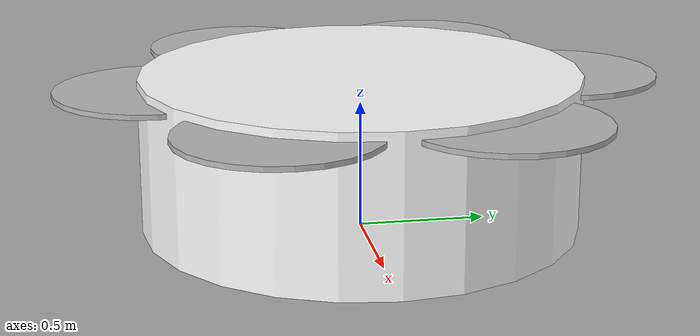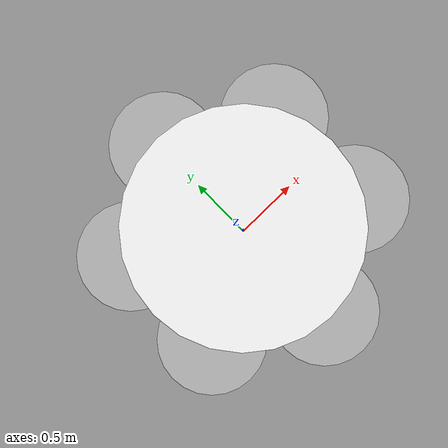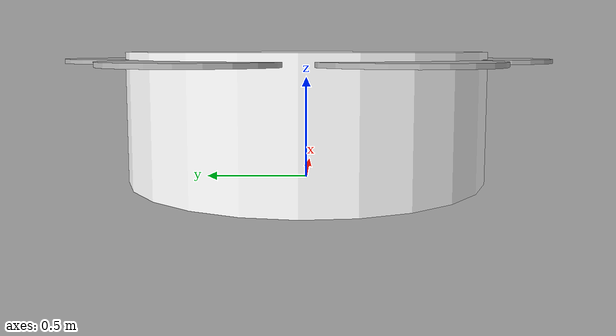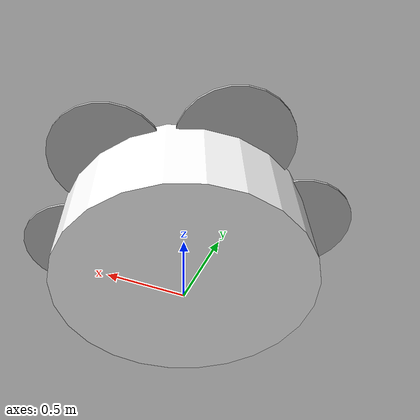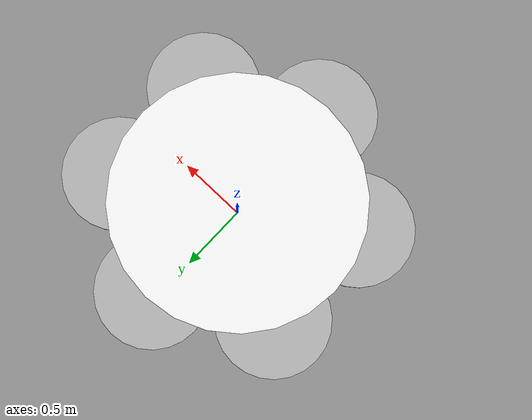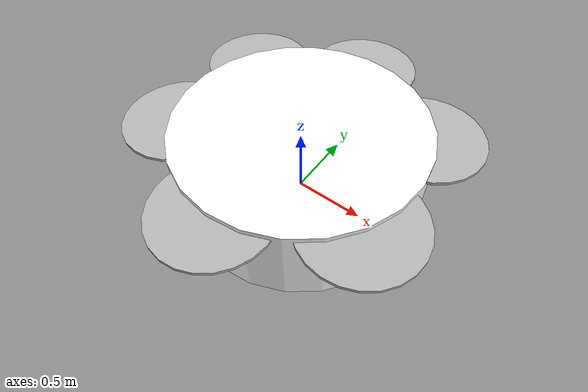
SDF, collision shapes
<?xml version="1.0" encoding="UTF-8"?>
<sdf version='1.9'>
  <model name='PLACE_mockup'>
    <pose>0 0 .24 0 0 0</pose>
    <self_collide>false</self_collide>
    <static>false</static>
    <link name="base_link">
      <inertial>
        <mass>5.0</mass>
        <inertia>
          <ixx>0.197166667</ixx>
          <ixy>0</ixy>
          <ixz>0</ixz>
          <iyy>0.197166667</iyy>
          <iyz>0</iyz>
          <izz>0.34225</izz>
        </inertia>
      </inertial>
      <gravity>true</gravity>
      <velocity_decay/>
      <visual name="base_link_visual">
        <pose>0 0 0.15 0 0 1.57</pose>
        <geometry>
          <mesh>
            <scale>1 1 1</scale>
            <uri>model://PLACE_mockup/meshes/PLACE_mockup_coloured_2.dae</uri>
          </mesh>
        </geometry>
      </visual>
      <visual name="5010_motor_base_0">
        <pose>0 0.8 0.3315 0 0 0</pose>
        <geometry>
          <mesh>
            <scale>1 1 1</scale>
            <uri>model://PLACE_mockup/meshes/5010Base.dae</uri>
          </mesh>
        </geometry>
      </visual>
      <visual name="5010_motor_base_1">
        <pose>0.692 0.4 0.3315 0 0 0</pose>
        <geometry>
          <mesh>
            <scale>1 1 1</scale>
            <uri>model://PLACE_mockup/meshes/5010Base.dae</uri>
          </mesh>
        </geometry>
      </visual>
      <visual name="5010_motor_base_2">
        <pose>0.692 -0.4 0.3315 0 0 0</pose>
        <geometry>
          <mesh>
            <scale>1 1 1</scale>
            <uri>model://PLACE_mockup/meshes/5010Base.dae</uri>
          </mesh>
        </geometry>
      </visual>
      <visual name="5010_motor_base_3">
        <pose>0 -0.8 0.3315 0 0 0</pose>
        <geometry>
          <mesh>
            <scale>1 1 1</scale>
            <uri>model://PLACE_mockup/meshes/5010Base.dae</uri>
          </mesh>
        </geometry>
      </visual>
      <visual name="5010_motor_base_4">
        <pose>-0.692 -0.4 0.3315 0 0 0</pose>
        <geometry>
          <mesh>
            <scale>1 1 1</scale>
            <uri>model://PLACE_mockup/meshes/5010Base.dae</uri>
          </mesh>
        </geometry>
      </visual>
      <visual name="5010_motor_base_5">
        <pose>-0.692 0.4 0.3315 0 0 0</pose>
        <geometry>
          <mesh>
            <scale>1 1 1</scale>
            <uri>model://PLACE_mockup/meshes/5010Base.dae</uri>
          </mesh>
        </geometry>
      </visual>
      <visual name="NXP_FMUK66_FRONT">
        <pose>0.047 .001 .043 1 0 1.57</pose>
        <cast_shadows>false</cast_shadows>
        <geometry>
          <plane>
            <normal>0 0 1</normal>
            <size>.013 .007</size>
          </plane>
        </geometry>
        <material>
          <diffuse>1.0 1.0 1.0</diffuse>
          <specular>1.0 1.0 1.0</specular>
          <pbr>
            <metal>
              <albedo_map>model://PLACE_mockup/materials/textures/nxp.png</albedo_map>
            </metal>
          </pbr>
        </material>
      </visual>
      <visual name="NXP_FMUK66_TOP">
        <pose>-0.023 0 .0515 0 0 -1.57</pose>
        <cast_shadows>false</cast_shadows>
        <geometry>
          <plane>
            <normal>0 0 1</normal>
            <size>.013 .007</size>
          </plane>
        </geometry>
        <material>
          <diffuse>1.0 1.0 1.0</diffuse>
          <specular>1.0 1.0 1.0</specular>
          <pbr>
            <metal>
              <albedo_map>model://PLACE_mockup/materials/textures/nxp.png</albedo_map>
            </metal>
          </pbr>
        </material>
      </visual>
      <visual name="RDDRONE_FMUK66_TOP">
        <pose>-.03 0 .0515 0 0 -1.57</pose>
        <cast_shadows>false</cast_shadows>
        <geometry>
          <plane>
            <normal>0 0 1</normal>
            <size>.032 .0034</size>
          </plane>
        </geometry>
        <material>
          <diffuse>1.0 1.0 1.0</diffuse>
          <specular>1.0 1.0 1.0</specular>
          <pbr>
            <metal>
              <albedo_map>model://PLACE_mockup/materials/textures/rd.png</albedo_map>
            </metal>
          </pbr>
        </material>
      </visual>
      <collision name="base_link_collision_0">
        <pose>0 0 0.08 0 0 0</pose>
        <geometry>
          <cylinder>
            <radius>0.86</radius>
            <length>0.61</length>
          </cylinder>
        </geometry>
        <surface>
          <contact>
            <ode>
              <min_depth>0.001</min_depth>
              <max_vel>0</max_vel>
            </ode>
          </contact>
          <friction>
            <ode/>
          </friction>
        </surface>
      </collision>
      <sensor name="air_pressure_sensor" type="air_pressure">
        <always_on>1</always_on>
        <update_rate>50</update_rate>
        <air_pressure>
          <pressure>
            <noise type="gaussian">
              <mean>0</mean>
              <stddev>0.01</stddev>
            </noise>
          </pressure>
        </air_pressure>
      </sensor>
      <sensor name="imu_sensor" type="imu">
        <always_on>1</always_on>
        <update_rate>250</update_rate>
      </sensor>
    </link>
    <link name="buoyant_0">
    <gravity>true</gravity>
      <self_collide>false</self_collide>
      <velocity_decay/>
      <pose>0 0.8 0 0 0 0</pose>
      <inertial>
          <mass>2.5</mass>
          <inertia>
            <ixx>0.0293177083</ixx>
            <iyy>0.0293177083</iyy>
            <izz>0.003125</izz>
          </inertia>
      </inertial>
    </link>
    <joint name="buoyant_0_joint" type="fixed">
      <parent>base_link</parent>
      <child>buoyant_0</child>
    </joint>
    <link name="rotor_0">
      <gravity>true</gravity>
      <self_collide>false</self_collide>
      <velocity_decay/>
      <pose>0 0.8 0.3315 0 0 0</pose>
        <inertial>
          <mass>0.016076923076923075</mass>
          <inertia>
            <ixx>3.8464910483993325e-07</ixx>
            <iyy>2.6115851691700804e-05</iyy>
            <izz>2.649858234714004e-05</izz>
          </inertia>
        </inertial>
      <visual name="rotor_0_visual">
        <pose>0 0 0.01 0 0 0</pose>
        <geometry>
          <mesh>
            <scale>1 1 1</scale>
            <uri>model://PLACE_mockup/meshes/propeller.dae</uri>
          </mesh>
        </geometry>
      </visual>
      <collision name="rotor_0_collision">
        <pose>0 0 0.01 0 0 0 </pose>
        <geometry>
          <cylinder>
            <radius>0.38</radius>
            <length>0.02</length>
          </cylinder>
        </geometry>
        <surface>
          <contact>
            <ode>
              <min_depth>0.001</min_depth>
              <max_vel>0</max_vel>
            </ode>
          </contact>
          <friction>
            <ode/>
          </friction>
        </surface>
      </collision>
    </link>
    <joint name="rotor_0_joint" type="revolute">
      <parent>base_link</parent>
      <child>rotor_0</child>
      <axis>
        <xyz>0 0 1</xyz>
        <limit>
          <lower>-1e+16</lower>
          <upper>1e+16</upper>
        </limit>
        <dynamics>
          <spring_reference>0</spring_reference>
          <spring_stiffness>0</spring_stiffness>
        </dynamics>
      </axis>
    </joint>
    <link name="buoyant_1">
    <gravity>true</gravity>
      <self_collide>false</self_collide>
      <velocity_decay/>
      <pose>0.692 0.4 0 0 0 0</pose>
      <inertial>
          <mass>2.5</mass>
          <inertia>
            <ixx>0.0293177083</ixx>
            <iyy>0.0293177083</iyy>
            <izz>0.003125</izz>
          </inertia>
      </inertial>
    </link>
    <joint name="buoyant_1_joint" type="fixed">
      <parent>base_link</parent>
      <child>buoyant_1</child>
    </joint>
    <link name="rotor_1">
      <gravity>true</gravity>
      <self_collide>false</self_collide>
      <velocity_decay/>
      <pose>0.692 0.4 0.3315 0 0 0</pose>
      <inertial>
          <mass>0.016076923076923075</mass>
          <inertia>
            <ixx>0.0293177083</ixx>
            <iyy>0.0293177083</iyy>
            <izz>0.003125</izz>
          </inertia>
        </inertial>
      <visual name="rotor_1_visual">
        <pose>0 0 0.01 0 0 0</pose>
        <geometry>
          <mesh>
            <scale>1 1 1</scale>
            <uri>model://PLACE_mockup/meshes/propeller.dae</uri>
          </mesh>
        </geometry>
      </visual>
      <collision name="rotor_1_collision">
        <pose>0 0 0.01 0 0 0 </pose>
        <geometry>
          <cylinder>
            <radius>0.38</radius>
            <length>0.02</length>
          </cylinder>
        </geometry>
        <surface>
          <contact>
            <ode>
              <min_depth>0.001</min_depth>
              <max_vel>0</max_vel>
            </ode>
          </contact>
          <friction>
            <ode/>
          </friction>
        </surface>
      </collision>
    </link>
    <joint name="rotor_1_joint" type="revolute">
      <parent>base_link</parent>
      <child>rotor_1</child>
      <axis>
        <xyz>0 0 1</xyz>
        <limit>
          <lower>-1e+16</lower>
          <upper>1e+16</upper>
        </limit>
        <dynamics>
          <spring_reference>0</spring_reference>
          <spring_stiffness>0</spring_stiffness>
        </dynamics>
      </axis>
    </joint>
    <link name="buoyant_2">
    <gravity>true</gravity>
      <self_collide>false</self_collide>
      <velocity_decay/>
      <pose>0.692 -0.4 0 0 0 0</pose>
      <inertial>
          <mass>2.5</mass>
          <inertia>
            <ixx>0.0293177083</ixx>
            <iyy>0.0293177083</iyy>
            <izz>0.003125</izz>
          </inertia>
      </inertial>
    </link>
    <joint name="buoyant_2_joint" type="fixed">
      <parent>base_link</parent>
      <child>buoyant_2</child>
    </joint>
    <link name="rotor_2">
      <gravity>true</gravity>
      <self_collide>false</self_collide>
      <velocity_decay/>
      <pose>0.692 -0.4 0.3315 0 0 0</pose>
      <inertial>
          <mass>0.016076923076923075</mass>
          <inertia>
            <ixx>3.8464910483993325e-07</ixx>
            <iyy>2.6115851691700804e-05</iyy>
            <izz>2.649858234714004e-05</izz>
          </inertia>
        </inertial>
      <visual name="rotor_2_visual">
        <pose>0 0 0.01 0 0 0</pose>
        <geometry>
          <mesh>
            <scale>1 1 1</scale>
            <uri>model://PLACE_mockup/meshes/propeller.dae</uri>
          </mesh>
        </geometry>
      </visual>
      <collision name="rotor_2_collision">
        <pose>0 0 0.01 0 0 0 </pose>
        <geometry>
          <cylinder>
            <radius>0.38</radius>
            <length>0.02</length>
          </cylinder>
        </geometry>
        <surface>
          <contact>
            <ode>
              <min_depth>0.001</min_depth>
              <max_vel>0</max_vel>
            </ode>
          </contact>
          <friction>
            <ode/>
          </friction>
        </surface>
      </collision>
    </link>
    <joint name="rotor_2_joint" type="revolute">
      <parent>base_link</parent>
      <child>rotor_2</child>
      <axis>
        <xyz>0 0 1</xyz>
        <limit>
          <lower>-1e+16</lower>
          <upper>1e+16</upper>
        </limit>
        <dynamics>
          <spring_reference>0</spring_reference>
          <spring_stiffness>0</spring_stiffness>
        </dynamics>
      </axis>
    </joint>
    <link name="buoyant_3">
    <gravity>true</gravity>
      <self_collide>false</self_collide>
      <velocity_decay/>
      <pose>0 -0.8 0 0 0 0</pose>
      <inertial>
          <mass>2.5</mass>
          <inertia>
            <ixx>0.0293177083</ixx>
            <iyy>0.0293177083</iyy>
            <izz>0.003125</izz>
          </inertia>
      </inertial>
    </link>
    <joint name="buoyant_3_joint" type="fixed">
      <parent>base_link</parent>
      <child>buoyant_3</child>
    </joint>
    <link name="rotor_3">
      <gravity>true</gravity>
      <self_collide>false</self_collide>
      <velocity_decay/>
      <pose>0 -0.8 0.3315 0 0 0</pose>
      <inertial>
          <mass>0.016076923076923075</mass>
          <inertia>
            <ixx>3.8464910483993325e-07</ixx>
            <iyy>2.6115851691700804e-05</iyy>
            <izz>2.649858234714004e-05</izz>
          </inertia>
        </inertial>
      <visual name="rotor_3_visual">
        <pose>0 0 0.01 0 0 0</pose>
        <geometry>
          <mesh>
            <scale>1 1 1</scale>
            <uri>model://PLACE_mockup/meshes/propeller.dae</uri>
          </mesh>
        </geometry>
      </visual>
      <collision name="rotor_3_collision">
        <pose>0 0 0.01 0 0 0 </pose>
        <geometry>
          <cylinder>
            <radius>0.38</radius>
            <length>0.02</length>
          </cylinder>
        </geometry>
        <surface>
          <contact>
            <ode>
              <min_depth>0.001</min_depth>
              <max_vel>0</max_vel>
            </ode>
          </contact>
          <friction>
            <ode/>
          </friction>
        </surface>
      </collision>
    </link>
    <joint name="rotor_3_joint" type="revolute">
      <parent>base_link</parent>
      <child>rotor_3</child>
      <axis>
        <xyz>0 0 1</xyz>
        <limit>
          <lower>-1e+16</lower>
          <upper>1e+16</upper>
        </limit>
        <dynamics>
          <spring_reference>0</spring_reference>
          <spring_stiffness>0</spring_stiffness>
        </dynamics>
      </axis>
    </joint>
    <link name="buoyant_4">
    <gravity>true</gravity>
      <self_collide>false</self_collide>
      <velocity_decay/>
      <pose>-0.692 -0.4 0 0 0 0</pose>
      <inertial>
          <mass>2.5</mass>
          <inertia>
            <ixx>0.0293177083</ixx>
            <iyy>0.0293177083</iyy>
            <izz>0.003125</izz>
          </inertia>
      </inertial>
    </link>
    <joint name="buoyant_4_joint" type="fixed">
      <parent>base_link</parent>
      <child>buoyant_4</child>
    </joint>
    <link name="rotor_4">
      <gravity>true</gravity>
      <self_collide>false</self_collide>
      <velocity_decay/>
      <pose>-0.692 -0.4 0.3315 0 0 0</pose>
      <inertial>
          <mass>0.016076923076923075</mass>
          <inertia>
            <ixx>3.8464910483993325e-07</ixx>
            <iyy>2.6115851691700804e-05</iyy>
            <izz>2.649858234714004e-05</izz>
          </inertia>
        </inertial>
      <visual name="rotor_4_visual">
        <pose>0 0 0.01 0 0 0</pose>
        <geometry>
          <mesh>
            <scale>1 1 1</scale>
            <uri>model://PLACE_mockup/meshes/propeller.dae</uri>
          </mesh>
        </geometry>
      </visual>
      <collision name="rotor_4_collision">
        <pose>0 0 0.01 0 0 0 </pose>
        <geometry>
          <cylinder>
            <radius>0.38</radius>
            <length>0.02</length>
          </cylinder>
        </geometry>
        <surface>
          <contact>
            <ode>
              <min_depth>0.001</min_depth>
              <max_vel>0</max_vel>
            </ode>
          </contact>
          <friction>
            <ode/>
          </friction>
        </surface>
      </collision>
    </link>
    <joint name="rotor_4_joint" type="revolute">
      <parent>base_link</parent>
      <child>rotor_4</child>
      <axis>
        <xyz>0 0 1</xyz>
        <limit>
          <lower>-1e+16</lower>
          <upper>1e+16</upper>
        </limit>
        <dynamics>
          <spring_reference>0</spring_reference>
          <spring_stiffness>0</spring_stiffness>
        </dynamics>
      </axis>
    </joint>
    <link name="buoyant_5">
    <gravity>true</gravity>
      <self_collide>false</self_collide>
      <velocity_decay/>
      <pose>-0.692 0.4 0 0 0 0</pose>
      <inertial>
          <mass>2.5</mass>
          <inertia>
            <ixx>0.0293177083</ixx>
            <iyy>0.0293177083</iyy>
            <izz>0.003125</izz>
          </inertia>
      </inertial>
    </link>
    <joint name="buoyant_5_joint" type="fixed">
      <parent>base_link</parent>
      <child>buoyant_5</child>
    </joint>
    <link name="rotor_5">
      <gravity>true</gravity>
      <self_collide>false</self_collide>
      <velocity_decay/>
      <pose>-0.692 0.4 0.3315 0 0 0</pose>
      <inertial>
          <mass>0.016076923076923075</mass>
          <inertia>
            <ixx>3.8464910483993325e-07</ixx>
            <iyy>2.6115851691700804e-05</iyy>
            <izz>2.649858234714004e-05</izz>
          </inertia>
        </inertial>
      <visual name="rotor_5_visual">
        <pose>0 0 0.01 0 0 0</pose>
        <geometry>
          <mesh>
            <scale>1 1 1</scale>
            <uri>model://PLACE_mockup/meshes/propeller.dae</uri>
          </mesh>
        </geometry>
      </visual>
      <collision name="rotor_5_collision">
        <pose>0 0 0.01 0 0 0 </pose>
        <geometry>
          <cylinder>
            <radius>0.38</radius>
            <length>0.02</length>
          </cylinder>
        </geometry>
        <surface>
          <contact>
            <ode>
              <min_depth>0.001</min_depth>
              <max_vel>0</max_vel>
            </ode>
          </contact>
          <friction>
            <ode/>
          </friction>
        </surface>
      </collision>
    </link>
    <joint name="rotor_5_joint" type="revolute">
      <parent>base_link</parent>
      <child>rotor_5</child>
      <axis>
        <xyz>0 0 1</xyz>
        <limit>
          <lower>-1e+16</lower>
          <upper>1e+16</upper>
        </limit>
        <dynamics>
          <spring_reference>0</spring_reference>
          <spring_stiffness>0</spring_stiffness>
        </dynamics>
      </axis>
    </joint>
   <plugin filename="gz-sim-multicopter-motor-model-system" name="gz::sim::systems::MulticopterMotorModel">
      <jointName>rotor_0_joint</jointName>
      <linkName>rotor_0</linkName>
      <turningDirection>cw</turningDirection>
      <timeConstantUp>0.0125</timeConstantUp>
      <timeConstantDown>0.025</timeConstantDown>
      <maxRotVelocity>3500.0</maxRotVelocity>
      <motorConstant>8.54858e-06</motorConstant>
      <momentConstant>0.650</momentConstant>
      <commandSubTopic>command/motor_speed</commandSubTopic>
      <motorNumber>0</motorNumber>
      <rotorDragCoefficient>8.06428e-05</rotorDragCoefficient>
      <rollingMomentCoefficient>1e-06</rollingMomentCoefficient>
      <rotorVelocitySlowdownSim>10</rotorVelocitySlowdownSim>
      <motorType>velocity</motorType>
    </plugin>
    <plugin filename="gz-sim-multicopter-motor-model-system" name="gz::sim::systems::MulticopterMotorModel">
      <jointName>rotor_1_joint</jointName>
      <linkName>rotor_1</linkName>
      <turningDirection>ccw</turningDirection>
      <timeConstantUp>0.0125</timeConstantUp>
      <timeConstantDown>0.025</timeConstantDown>
      <maxRotVelocity>3500.0</maxRotVelocity>
      <motorConstant>8.54858e-06</motorConstant>
      <momentConstant>0.650</momentConstant>
      <commandSubTopic>command/motor_speed</commandSubTopic>
      <motorNumber>1</motorNumber>
      <rotorDragCoefficient>8.06428e-05</rotorDragCoefficient>
      <rollingMomentCoefficient>1e-06</rollingMomentCoefficient>
      <rotorVelocitySlowdownSim>10</rotorVelocitySlowdownSim>
      <motorType>velocity</motorType>
    </plugin>
    <plugin filename="gz-sim-multicopter-motor-model-system" name="gz::sim::systems::MulticopterMotorModel">
      <jointName>rotor_2_joint</jointName>
      <linkName>rotor_2</linkName>
      <turningDirection>cw</turningDirection>
      <timeConstantUp>0.0125</timeConstantUp>
      <timeConstantDown>0.025</timeConstantDown>
      <maxRotVelocity>3500.0</maxRotVelocity>
      <motorConstant>8.54858e-06</motorConstant>
      <momentConstant>0.650</momentConstant>
      <commandSubTopic>command/motor_speed</commandSubTopic>
      <motorNumber>2</motorNumber>
      <rotorDragCoefficient>8.06428e-05</rotorDragCoefficient>
      <rollingMomentCoefficient>1e-06</rollingMomentCoefficient>
      <rotorVelocitySlowdownSim>10</rotorVelocitySlowdownSim>
      <motorType>velocity</motorType>
    </plugin>
    <plugin filename="gz-sim-multicopter-motor-model-system" name="gz::sim::systems::MulticopterMotorModel">
      <jointName>rotor_3_joint</jointName>
      <linkName>rotor_3</linkName>
      <turningDirection>ccw</turningDirection>
      <timeConstantUp>0.0125</timeConstantUp>
      <timeConstantDown>0.025</timeConstantDown>
      <maxRotVelocity>3500.0</maxRotVelocity>
      <motorConstant>8.54858e-06</motorConstant>
      <momentConstant>0.650</momentConstant>
      <commandSubTopic>command/motor_speed</commandSubTopic>
      <motorNumber>3</motorNumber>
      <rotorDragCoefficient>8.06428e-05</rotorDragCoefficient>
      <rollingMomentCoefficient>1e-06</rollingMomentCoefficient>
      <rotorVelocitySlowdownSim>10</rotorVelocitySlowdownSim>
      <motorType>velocity</motorType>
    </plugin>
    <plugin filename="gz-sim-multicopter-motor-model-system" name="gz::sim::systems::MulticopterMotorModel">
      <jointName>rotor_4_joint</jointName>
      <linkName>rotor_4</linkName>
      <turningDirection>cw</turningDirection>
      <timeConstantUp>0.0125</timeConstantUp>
      <timeConstantDown>0.025</timeConstantDown>
      <maxRotVelocity>3500.0</maxRotVelocity>
      <motorConstant>8.54858e-06</motorConstant>
      <momentConstant>0.650</momentConstant>
      <commandSubTopic>command/motor_speed</commandSubTopic>
      <motorNumber>4</motorNumber>
      <rotorDragCoefficient>8.06428e-05</rotorDragCoefficient>
      <rollingMomentCoefficient>1e-06</rollingMomentCoefficient>
      <rotorVelocitySlowdownSim>10</rotorVelocitySlowdownSim>
      <motorType>velocity</motorType>
    </plugin>
    <plugin filename="gz-sim-multicopter-motor-model-system" name="gz::sim::systems::MulticopterMotorModel">
      <jointName>rotor_5_joint</jointName>
      <linkName>rotor_5</linkName>
      <turningDirection>ccw</turningDirection>
      <timeConstantUp>0.0125</timeConstantUp>
      <timeConstantDown>0.025</timeConstantDown>
      <maxRotVelocity>3500.0</maxRotVelocity>
      <motorConstant>8.54858e-06</motorConstant>
      <momentConstant>0.650</momentConstant>
      <commandSubTopic>command/motor_speed</commandSubTopic>
      <motorNumber>5</motorNumber>
      <rotorDragCoefficient>8.06428e-05</rotorDragCoefficient>
      <rollingMomentCoefficient>1e-06</rollingMomentCoefficient>
      <rotorVelocitySlowdownSim>10</rotorVelocitySlowdownSim>
      <motorType>velocity</motorType>
    </plugin>
    <!--MODS: adding buoyant point from which real wave height will be extracted-->
    <plugin filename="libCentralSurfacePlace.so" name="vrx::CentralSurfacePlace">
      <link_name>base_link</link_name>
      <hull_height>0.283</hull_height>
      <hull_radius>0.05</hull_radius>
      <fluid_level>0.0</fluid_level>
      <fluid_density>997</fluid_density>
      <points>
        <point>0 0 0</point>
      </points>
      <wavefield>
        <size>6000 6000</size>
     		<cell_count>500 500</cell_count>
        <topic>/vrx/wavefield/parameters</topic>
      </wavefield>
    </plugin>
    <plugin filename="libSurfacePlace.so" name="vrx::SurfacePlace">
      <link_name>base_link</link_name>
      <hull_height>0.25</hull_height>
      <hull_radius>0.37</hull_radius>
      <fluid_level>0.0</fluid_level>
      <fluid_density>997</fluid_density>
      <points>
        <point>0.12 0 0</point>
        <point>0.24 0 0</point>
        <point>-0.12 0 0</point>
        <point>-0.24 0 0</point>
        <point>0 0.12 0</point>
        <point>0 0.24 0</point>
        <point>0 -0.12 0</point>
        <point>0 -0.24 0</point>
        <point>0.12 0.12 0</point>
        <point>0.24 0.24 0</point>
        <point>-0.12 -0.12 0</point>
        <point>-0.24 -0.24 0</point>
        <point>0.12 -0.12 0</point>
        <point>0.24 -0.24 0</point>
        <point>-0.12 0.12 0</point>
        <point>-0.24 0.24 0</point>
      </points>
      <wavefield>
        <size>6000 6000</size>
     		<cell_count>500 500</cell_count>
        <topic>/vrx/wavefield/parameters</topic>
      </wavefield>
    </plugin>
    <plugin filename="libSurfacePlace.so" name="vrx::SurfacePlace">
      <link_name>base_link</link_name>
      <hull_height>0.283</hull_height>
      <hull_radius>0.05</hull_radius>
      <fluid_level>0.0</fluid_level>
      <fluid_density>997</fluid_density>
      <points>
        <point>0 0.8 0</point>
      </points>
      <wavefield>
        <size>6000 6000</size>
     		<cell_count>500 500</cell_count>
        <topic>/vrx/wavefield/parameters</topic>
      </wavefield>
    </plugin>
    <plugin filename="libSurfacePlace.so" name="vrx::SurfacePlace">
      <link_name>base_link</link_name>
      <hull_height>0.283</hull_height>
      <hull_radius>0.05</hull_radius>
      <fluid_level>0.0</fluid_level>
      <fluid_density>997</fluid_density>
      <points>
        <point>0.692 0.4 0</point>
      </points>
      <wavefield>
        <size>6000 6000</size>
     		<cell_count>500 500</cell_count>
        <topic>/vrx/wavefield/parameters</topic>
      </wavefield>
    </plugin>
    <plugin filename="libSurfacePlace.so" name="vrx::SurfacePlace">
      <link_name>base_link</link_name>
      <hull_height>0.283</hull_height>
      <hull_radius>0.05</hull_radius>
      <fluid_level>0.0</fluid_level>
      <fluid_density>997</fluid_density>
      <points>
        <point>0.692 -0.4 0</point>
      </points>
      <wavefield>
        <size>6000 6000</size>
     		<cell_count>500 500</cell_count>
        <topic>/vrx/wavefield/parameters</topic>
      </wavefield>
    </plugin>
    <plugin filename="libSurfacePlace.so" name="vrx::SurfacePlace">
      <link_name>base_link</link_name>
      <hull_height>0.283</hull_height>
      <hull_radius>0.05</hull_radius>
      <fluid_level>0.0</fluid_level>
      <fluid_density>997</fluid_density>
      <points>
        <point>0 -0.8 0</point>
      </points>
      <wavefield>
        <size>6000 6000</size>
     		<cell_count>500 500</cell_count>
        <topic>/vrx/wavefield/parameters</topic>
      </wavefield>
    </plugin>
    <plugin filename="libSurfacePlace.so" name="vrx::SurfacePlace">
      <link_name>base_link</link_name>
      <hull_height>0.283</hull_height>
      <hull_radius>0.05</hull_radius>
      <fluid_level>0.0</fluid_level>
      <fluid_density>997</fluid_density>
      <points>
        <point>-0.692 -0.4 0</point>
      </points>
      <wavefield>
        <size>6000 6000</size>
     		<cell_count>500 500</cell_count>
        <topic>/vrx/wavefield/parameters</topic>
      </wavefield>
    </plugin>
    <plugin filename="libSurfacePlace.so" name="vrx::SurfacePlace">
      <link_name>base_link</link_name>
      <hull_height>0.283</hull_height>
      <hull_radius>0.05</hull_radius>
      <fluid_level>0.0</fluid_level>
      <fluid_density>997</fluid_density>
      <points>
        <point>-0.692 0.4 0</point>
      </points>
      <wavefield>
        <size>6000 6000</size>
     		<cell_count>500 500</cell_count>
        <topic>/vrx/wavefield/parameters</topic>
      </wavefield>
    </plugin>
  </model>
</sdf>
